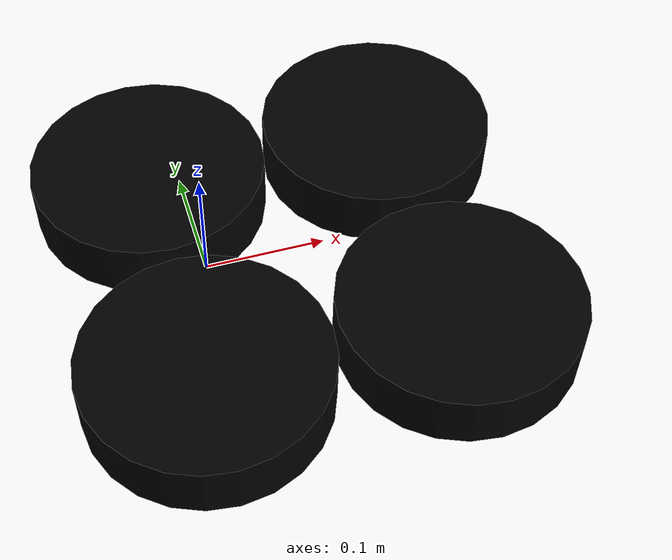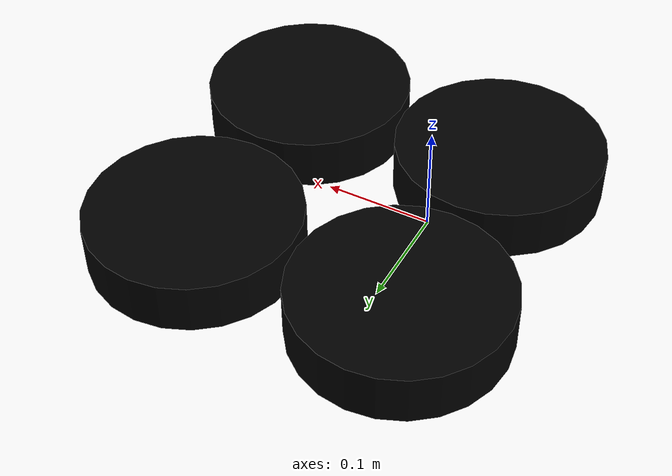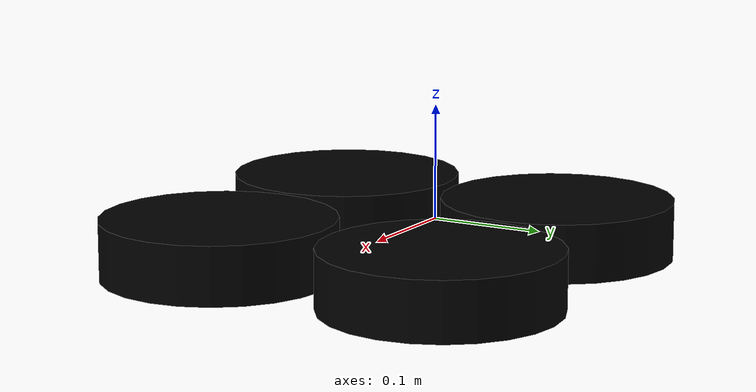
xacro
<?xml version="1.0"?>
<robot xmlns:xacro="http://www.ros.org/wiki/xacro">

    <material name="white">
        <color rgba="1 1 1 1"/>
    </material>

    <material name="orange">
        <color rgba="1 0.3 0.1 1"/>
    </material>

    <material name="blue">
        <color rgba="0.2 0.2 1 1"/>
    </material>

    <material name="black">
        <color rgba="0 0 0 1"/>
    </material>

    <link name="base_link">
    </link>

    <!-- Define a link for each wheel -->
    <link name="front_left_wheel_link">
        <visual>
            <geometry>
                <cylinder radius="0.1" length="0.05"/>
            </geometry>
            <material name="black"/>
        </visual>
    </link>

    <link name="front_right_wheel_link">
        <visual>
            <geometry>
                <cylinder radius="0.1" length="0.05"/>
            </geometry>
            <material name="black"/>
        </visual>
    </link>

    <link name="rear_left_wheel_link">
        <visual>
            <geometry>
                <cylinder radius="0.1" length="0.05"/>
            </geometry>
            <material name="black"/>
        </visual>
    </link>

    <link name="rear_right_wheel_link">
        <visual>
            <geometry>
                <cylinder radius="0.1" length="0.05"/>
            </geometry>
            <material name="black"/>
        </visual>
    </link>

    <!-- Joint to connect each wheel to the base link -->
    <!-- Adjust the origin to place the wheel correctly relative to the base_link -->

    <joint name="front_left_wheel_joint" type="continuous">
        <parent link="base_link"/>
        <child link="front_left_wheel_link"/>
        <origin xyz="0.18 0.105 0" rpy="0 0 0"/>
        <axis xyz="0 0 1"/>
    </joint>

    <joint name="front_right_wheel_joint" type="continuous">
        <parent link="base_link"/>
        <child link="front_right_wheel_link"/>
        <origin xyz="0.18 -0.105 0" rpy="0 0 0"/>
        <axis xyz="0 0 1"/>
    </joint>

    <joint name="rear_left_wheel_joint" type="continuous">
        <parent link="base_link"/>
        <child link="rear_left_wheel_link"/>
        <origin xyz="-0.025 0.105 0" rpy="0 0 0"/>
        <axis xyz="0 0 1"/>
    </joint>

    <joint name="rear_right_wheel_joint" type="continuous">
        <parent link="base_link"/>
        <child link="rear_right_wheel_link"/>
        <origin xyz="-0.025 -0.105 0" rpy="0 0 0"/>
        <axis xyz="0 0 1"/>
    </joint>

</robot>
